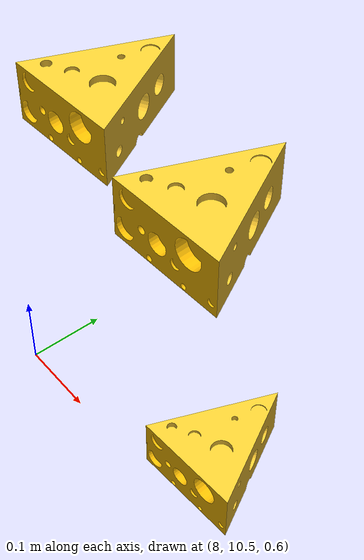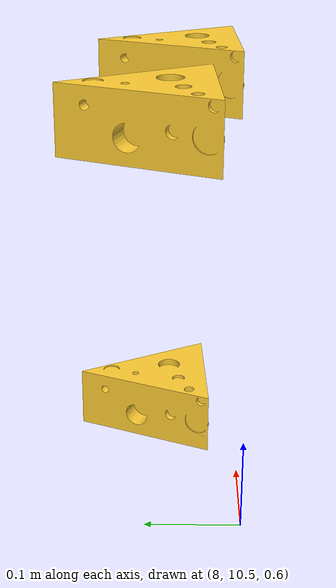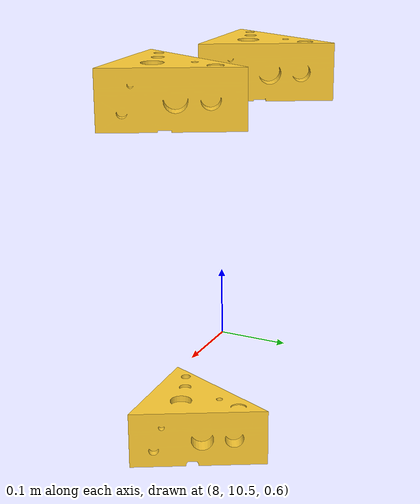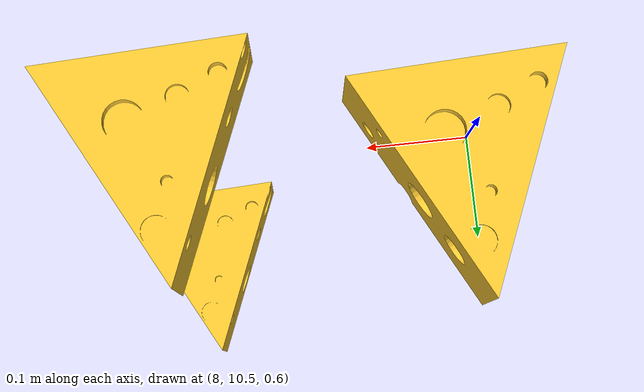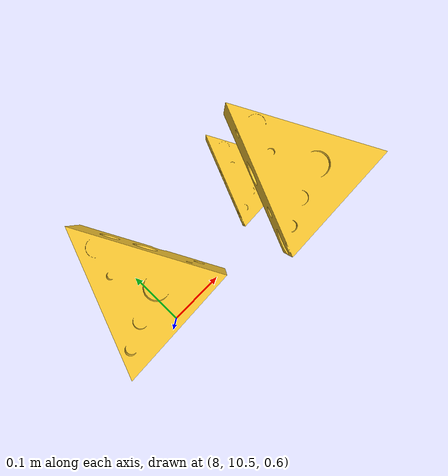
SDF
<sdf version="1.6">
 <world name="default">
  <model name="cheese">
   <link name="link_6">
    <inertial>
     <mass>1</mass>
     <inertia>
      <ixx>0.166667</ixx>
      <ixy>0</ixy>
      <ixz>0</ixz>
      <iyy>0.166667</iyy>
      <iyz>0</iyz>
      <izz>0.166667</izz>
     </inertia>
    </inertial>
    <pose>3e-06 -3e-06 0 0 -0 0</pose>
    <visual name="visual">
     <geometry><mesh><uri>model://cheese/meshes/cheese.dae</uri><scale>0.02 0.02 0.02</scale></mesh></geometry>
    </visual>
    <collision name="collision">
     <geometry><mesh><uri>model://cheese/meshes/cheese.dae</uri><scale>0.02 0.02 0.02</scale></mesh></geometry>
     <surface>
      <friction>
       <ode><mu>1</mu><mu2>1</mu2><fdir1>0 0 0</fdir1><slip1>0</slip1><slip2>0</slip2></ode>
       <torsional>
        <coefficient>1</coefficient>
        <patch_radius>0</patch_radius>
        <surface_radius>0</surface_radius>
        <use_patch_radius>1</use_patch_radius>
        <ode><slip>0</slip></ode>
       </torsional>
      </friction>
      <bounce><restitution_coefficient>0</restitution_coefficient><threshold>1e+06</threshold></bounce>
      <contact>
       <collide_without_contact>0</collide_without_contact>
       <collide_without_contact_bitmask>1</collide_without_contact_bitmask>
       <collide_bitmask>1</collide_bitmask>
       <ode>
        <soft_cfm>0</soft_cfm>
        <soft_erp>0.2</soft_erp>
        <kp>1e+13</kp>
        <kd>1</kd>
        <max_vel>0.01</max_vel>
        <min_depth>0</min_depth>
       </ode>
       <bullet>
        <split_impulse>1</split_impulse>
        <split_impulse_penetration_threshold>-0.01</split_impulse_penetration_threshold>
        <soft_cfm>0</soft_cfm>
        <soft_erp>0.2</soft_erp>
        <kp>1e+13</kp>
        <kd>1</kd>
       </bullet>
      </contact>
     </surface>
    </collision>
   </link>
   <static>1</static>
   <pose>8.07548 10.5944 0.977923 0 -0 1.617</pose>
  </model>
  <model name="cheese_clone_2">
   <link name="link_6">
    <inertial>
     <mass>1</mass>
     <inertia>
      <ixx>0.166667</ixx>
      <ixy>0</ixy>
      <ixz>0</ixz>
      <iyy>0.166667</iyy>
      <iyz>0</iyz>
      <izz>0.166667</izz>
     </inertia>
    </inertial>
    <pose>3e-06 -3e-06 0 0 -0 0</pose>
    <visual name="visual">
     <geometry><mesh><uri>model://cheese/meshes/cheese.dae</uri><scale>0.02 0.02 0.02</scale></mesh></geometry>
    </visual>
    <collision name="collision">
     <geometry><mesh><uri>model://cheese/meshes/cheese.dae</uri><scale>0.02 0.02 0.02</scale></mesh></geometry>
     <surface>
      <friction>
       <ode><mu>1</mu><mu2>1</mu2><fdir1>0 0 0</fdir1><slip1>0</slip1><slip2>0</slip2></ode>
       <torsional>
        <coefficient>1</coefficient>
        <patch_radius>0</patch_radius>
        <surface_radius>0</surface_radius>
        <use_patch_radius>1</use_patch_radius>
        <ode><slip>0</slip></ode>
       </torsional>
      </friction>
      <bounce><restitution_coefficient>0</restitution_coefficient><threshold>1e+06</threshold></bounce>
      <contact>
       <collide_without_contact>0</collide_without_contact>
       <collide_without_contact_bitmask>1</collide_without_contact_bitmask>
       <collide_bitmask>1</collide_bitmask>
       <ode>
        <soft_cfm>0</soft_cfm>
        <soft_erp>0.2</soft_erp>
        <kp>1e+13</kp>
        <kd>1</kd>
        <max_vel>0.01</max_vel>
        <min_depth>0</min_depth>
       </ode>
       <bullet>
        <split_impulse>1</split_impulse>
        <split_impulse_penetration_threshold>-0.01</split_impulse_penetration_threshold>
        <soft_cfm>0</soft_cfm>
        <soft_erp>0.2</soft_erp>
        <kp>1e+13</kp>
        <kd>1</kd>
       </bullet>
      </contact>
     </surface>
    </collision>
   </link>
   <static>1</static>
   <pose>8.27746 10.5959 0.561894 0 -0 1.617</pose>
  </model>
  <model name="cheese_clone_5">
   <link name="link_6">
    <inertial>
     <mass>1</mass>
     <inertia>
      <ixx>0.166667</ixx>
      <ixy>0</ixy>
      <ixz>0</ixz>
      <iyy>0.166667</iyy>
      <iyz>0</iyz>
      <izz>0.166667</izz>
     </inertia>
    </inertial>
    <pose>3e-06 -3e-06 0 0 -0 0</pose>
    <visual name="visual">
     <geometry><mesh><uri>model://cheese/meshes/cheese.dae</uri><scale>0.02 0.02 0.02</scale></mesh></geometry>
    </visual>
    <collision name="collision">
     <geometry><mesh><uri>model://cheese/meshes/cheese.dae</uri><scale>0.02 0.02 0.02</scale></mesh></geometry>
     <surface>
      <friction>
       <ode><mu>1</mu><mu2>1</mu2><fdir1>0 0 0</fdir1><slip1>0</slip1><slip2>0</slip2></ode>
       <torsional>
        <coefficient>1</coefficient>
        <patch_radius>0</patch_radius>
        <surface_radius>0</surface_radius>
        <use_patch_radius>1</use_patch_radius>
        <ode><slip>0</slip></ode>
       </torsional>
      </friction>
      <bounce><restitution_coefficient>0</restitution_coefficient><threshold>1e+06</threshold></bounce>
      <contact>
       <collide_without_contact>0</collide_without_contact>
       <collide_without_contact_bitmask>1</collide_without_contact_bitmask>
       <collide_bitmask>1</collide_bitmask>
       <ode>
        <soft_cfm>0</soft_cfm>
        <soft_erp>0.2</soft_erp>
        <kp>1e+13</kp>
        <kd>1</kd>
        <max_vel>0.01</max_vel>
        <min_depth>0</min_depth>
       </ode>
       <bullet>
        <split_impulse>1</split_impulse>
        <split_impulse_penetration_threshold>-0.01</split_impulse_penetration_threshold>
        <soft_cfm>0</soft_cfm>
        <soft_erp>0.2</soft_erp>
        <kp>1e+13</kp>
        <kd>1</kd>
       </bullet>
      </contact>
     </surface>
    </collision>
   </link>
   <static>1</static>
   <pose>8.2771 10.5666 0.977923 0 -0 1.617</pose>
  </model>
 </world>
</sdf>
